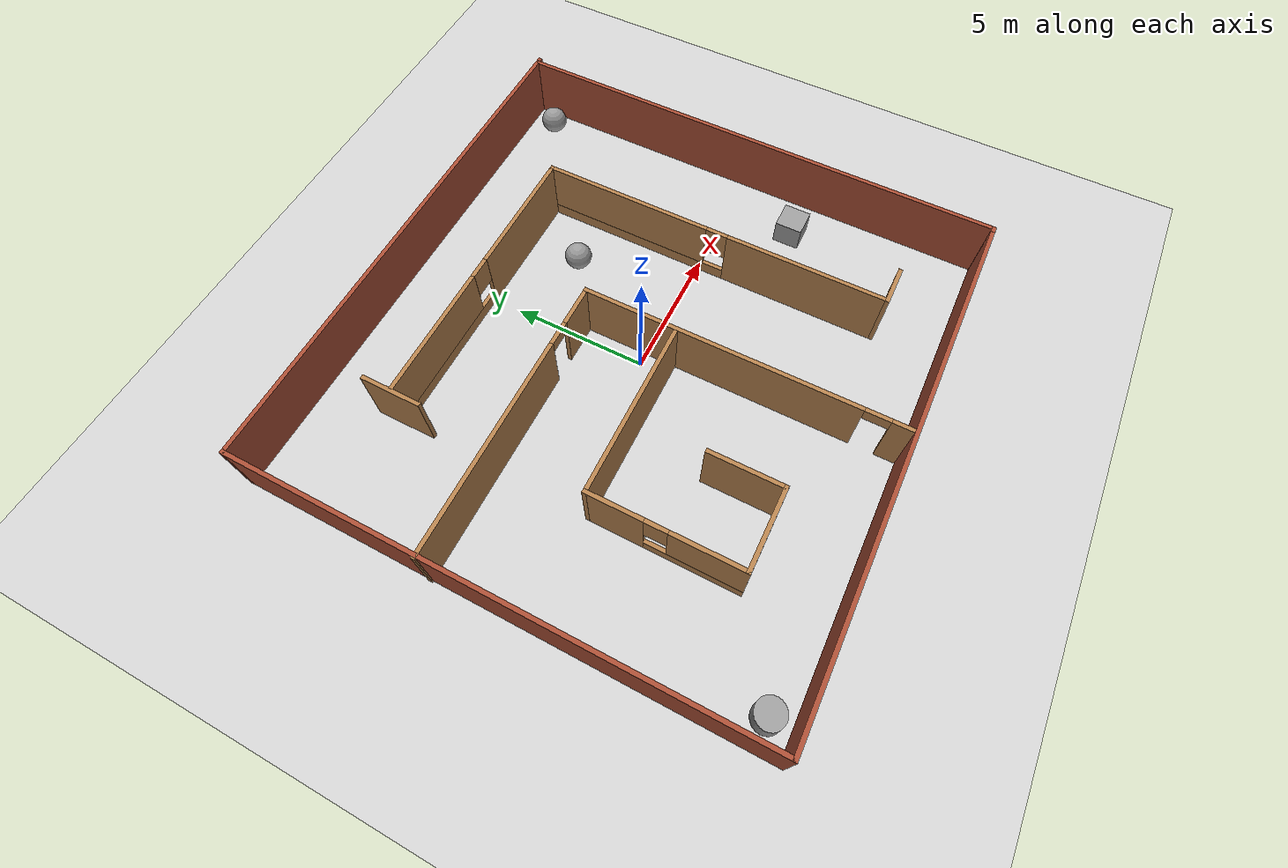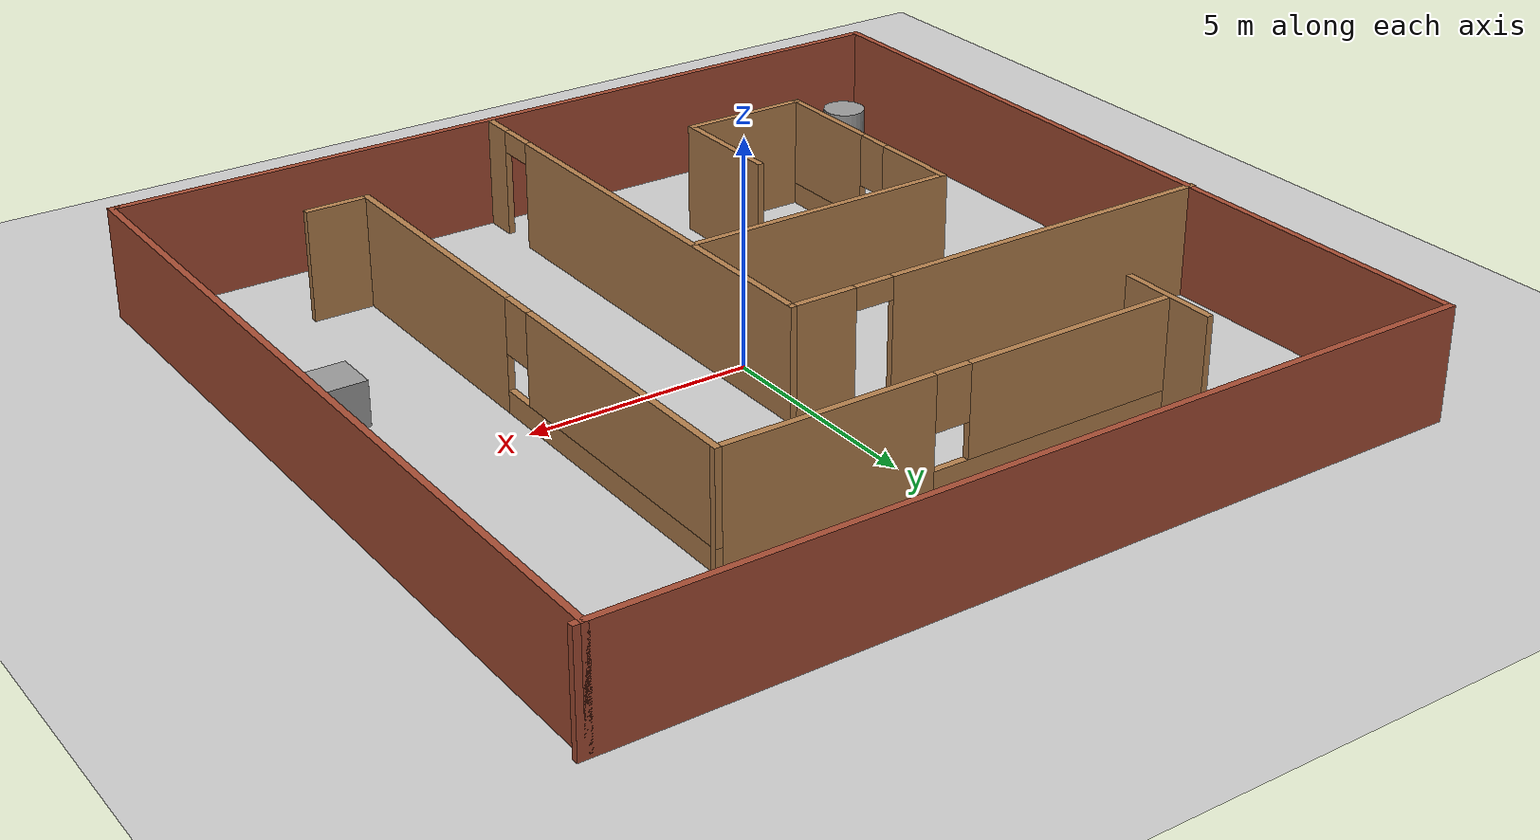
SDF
<sdf version="1.7">
 <world name="default">
  <light name="sun" type="directional">
   <pose>0 0 10 0 -0 0</pose>
   <diffuse>0.8 0.8 0.8 1</diffuse>
   <specular>0.2 0.2 0.2 1</specular>
   <attenuation>
    <range>1000</range>
    <constant>0.9</constant>
    <linear>0.01</linear>
    <quadratic>0.001</quadratic>
   </attenuation>
   <direction>-0.5 0.1 -0.9</direction>
   <spot><inner_angle>0</inner_angle><outer_angle>0</outer_angle><falloff>0</falloff></spot>
  </light>
  <model name="ground_plane">
   <static>1</static>
   <link name="link">
    <collision name="collision">
     <geometry><plane><normal>0 0 1</normal><size>100 100</size></plane></geometry>
     <surface>
      <contact><collide_bitmask>65535</collide_bitmask></contact>
      <friction><ode><mu>100</mu><mu2>50</mu2></ode></friction>
     </surface>
    </collision>
    <visual name="visual">
     <cast_shadows>0</cast_shadows>
     <geometry><plane><normal>0 0 1</normal><size>100 100</size></plane></geometry>
     <material>
      <script><uri>file://media/materials/scripts/gazebo.material</uri><name>Gazebo/Grey</name></script>
     </material>
    </visual>
   </link>
  </model>
  <gravity>0 0 -9.8</gravity>
  <magnetic_field>6e-06 2.3e-05 -4.2e-05</magnetic_field>
  <atmosphere type="adiabatic"/>
  <physics type="ode">
   <max_step_size>0.001</max_step_size>
   <real_time_factor>1</real_time_factor>
   <real_time_update_rate>1000</real_time_update_rate>
  </physics>
  <scene><ambient>0.4 0.4 0.4 1</ambient><background>0.7 0.7 0.7 1</background><shadows>1</shadows></scene>
  <audio><device>default</device></audio>
  <spherical_coordinates>
   <surface_model>EARTH_WGS84</surface_model>
   <latitude_deg>0</latitude_deg>
   <longitude_deg>0</longitude_deg>
   <elevation>0</elevation>
   <heading_deg>0</heading_deg>
  </spherical_coordinates>
  <model name="maze_model">
   <pose>-0.09937 0.063572 0 0 -0 0</pose>
   <link name="Wall_10">
    <pose>-0.271155 6.08651 0 0 -0 3.14159</pose>
    <visual name="Wall_10_Visual_0">
     <pose>-2.84357 0 1.25 0 -0 0</pose>
     <geometry><box><size>4.81286 0.15 2.5</size></box></geometry>
     <material>
      <script><uri>file://media/materials/scripts/gazebo.material</uri><name>Gazebo/Wood</name></script>
      <ambient>1 1 1 1</ambient>
     </material>
     <meta><layer>0</layer></meta>
    </visual>
    <collision name="Wall_10_Collision_0">
     <geometry><box><size>4.81286 0.15 2.5</size></box></geometry>
     <pose>-2.84357 0 1.25 0 -0 0</pose>
    </collision>
    <visual name="Wall_10_Visual_1">
     <pose>2.40643 0 0.25 0 -0 0</pose>
     <geometry><box><size>5.68714 0.15 0.5</size></box></geometry>
     <material>
      <script><uri>file://media/materials/scripts/gazebo.material</uri><name>Gazebo/Wood</name></script>
      <ambient>1 1 1 1</ambient>
     </material>
     <meta><layer>0</layer></meta>
    </visual>
    <collision name="Wall_10_Collision_1">
     <geometry><box><size>5.68714 0.15 0.5</size></box></geometry>
     <pose>2.40643 0 0.25 0 -0 0</pose>
    </collision>
    <visual name="Wall_10_Visual_2">
     <pose>2.80643 0 1.5 0 -0 0</pose>
     <geometry><box><size>4.88714 0.15 2</size></box></geometry>
     <material>
      <script><uri>file://media/materials/scripts/gazebo.material</uri><name>Gazebo/Wood</name></script>
      <ambient>1 1 1 1</ambient>
     </material>
     <meta><layer>0</layer></meta>
    </visual>
    <collision name="Wall_10_Collision_2">
     <geometry><box><size>4.88714 0.15 2</size></box></geometry>
     <pose>2.80643 0 1.5 0 -0 0</pose>
    </collision>
    <visual name="Wall_10_Visual_3">
     <pose>-0.037142 0 1.9 0 -0 0</pose>
     <geometry><box><size>0.8 0.15 1.2</size></box></geometry>
     <material>
      <script><uri>file://media/materials/scripts/gazebo.material</uri><name>Gazebo/Wood</name></script>
      <ambient>1 1 1 1</ambient>
     </material>
     <meta><layer>0</layer></meta>
    </visual>
    <collision name="Wall_10_Collision_3">
     <geometry><box><size>0.8 0.15 1.2</size></box></geometry>
     <pose>-0.037142 0 1.9 0 -0 0</pose>
    </collision>
   </link>
   <link name="Wall_12">
    <pose>-4.52562 2.33175 0 0 -0 0</pose>
    <visual name="Wall_12_Visual_0">
     <pose>-1.23012 0 1.25 0 -0 0</pose>
     <geometry><box><size>8.03976 0.15 2.5</size></box></geometry>
     <material>
      <script><uri>file://media/materials/scripts/gazebo.material</uri><name>Gazebo/Wood</name></script>
      <ambient>1 1 1 1</ambient>
     </material>
     <meta><layer>0</layer></meta>
    </visual>
    <collision name="Wall_12_Collision_0">
     <geometry><box><size>8.03976 0.15 2.5</size></box></geometry>
     <pose>-1.23012 0 1.25 0 -0 0</pose>
    </collision>
    <visual name="Wall_12_Visual_1">
     <pose>4.46988 0 1.25 0 -0 0</pose>
     <geometry><box><size>1.56024 0.15 2.5</size></box></geometry>
     <material>
      <script><uri>file://media/materials/scripts/gazebo.material</uri><name>Gazebo/Wood</name></script>
      <ambient>1 1 1 1</ambient>
     </material>
     <meta><layer>0</layer></meta>
    </visual>
    <collision name="Wall_12_Collision_1">
     <geometry><box><size>1.56024 0.15 2.5</size></box></geometry>
     <pose>4.46988 0 1.25 0 -0 0</pose>
    </collision>
    <visual name="Wall_12_Visual_2">
     <pose>3.23976 0 2.25 0 -0 0</pose>
     <geometry><box><size>0.9 0.15 0.5</size></box></geometry>
     <material>
      <script><uri>file://media/materials/scripts/gazebo.material</uri><name>Gazebo/Wood</name></script>
      <ambient>1 1 1 1</ambient>
     </material>
     <meta><layer>0</layer></meta>
    </visual>
    <collision name="Wall_12_Collision_2">
     <geometry><box><size>0.9 0.15 0.5</size></box></geometry>
     <pose>3.23976 0 2.25 0 -0 0</pose>
    </collision>
   </link>
   <link name="Wall_13">
    <pose>0.649382 -3.46825 0 0 -0 -1.5708</pose>
    <visual name="Wall_13_Visual_0">
     <pose>-0.823503 0 1.25 0 -0 0</pose>
     <geometry><box><size>10.103 0.15 2.5</size></box></geometry>
     <material>
      <script><uri>file://media/materials/scripts/gazebo.material</uri><name>Gazebo/Wood</name></script>
      <ambient>1 1 1 1</ambient>
     </material>
     <meta><layer>0</layer></meta>
    </visual>
    <collision name="Wall_13_Collision_0">
     <geometry><box><size>10.103 0.15 2.5</size></box></geometry>
     <pose>-0.823503 0 1.25 0 -0 0</pose>
    </collision>
    <visual name="Wall_13_Visual_1">
     <pose>5.5015 0 1.25 0 -0 0</pose>
     <geometry><box><size>0.747006 0.15 2.5</size></box></geometry>
     <material>
      <script><uri>file://media/materials/scripts/gazebo.material</uri><name>Gazebo/Wood</name></script>
      <ambient>1 1 1 1</ambient>
     </material>
     <meta><layer>0</layer></meta>
    </visual>
    <collision name="Wall_13_Collision_1">
     <geometry><box><size>0.747006 0.15 2.5</size></box></geometry>
     <pose>5.5015 0 1.25 0 -0 0</pose>
    </collision>
    <visual name="Wall_13_Visual_2">
     <pose>4.67799 0 2.25 0 -0 0</pose>
     <geometry><box><size>0.9 0.15 0.5</size></box></geometry>
     <material>
      <script><uri>file://media/materials/scripts/gazebo.material</uri><name>Gazebo/Wood</name></script>
      <ambient>1 1 1 1</ambient>
     </material>
     <meta><layer>0</layer></meta>
    </visual>
    <collision name="Wall_13_Collision_2">
     <geometry><box><size>0.9 0.15 0.5</size></box></geometry>
     <pose>4.67799 0 2.25 0 -0 0</pose>
    </collision>
   </link>
   <link name="Wall_15">
    <collision name="Wall_15_Collision">
     <geometry><box><size>1.5 0.15 2.5</size></box></geometry>
     <pose>0 0 1.25 0 -0 0</pose>
    </collision>
    <visual name="Wall_15_Visual">
     <pose>0 0 1.25 0 -0 0</pose>
     <geometry><box><size>1.5 0.15 2.5</size></box></geometry>
     <material>
      <script><uri>file://media/materials/scripts/gazebo.material</uri><name>Gazebo/Wood</name></script>
      <ambient>1 1 1 1</ambient>
     </material>
     <meta><layer>0</layer></meta>
    </visual>
    <pose>5.57885 -7.01349 0 0 -0 0</pose>
   </link>
   <link name="Wall_17">
    <collision name="Wall_17_Collision">
     <geometry><box><size>2.25 0.15 2.5</size></box></geometry>
     <pose>0 0 1.25 0 -0 0</pose>
    </collision>
    <visual name="Wall_17_Visual">
     <pose>0 0 1.25 0 -0 0</pose>
     <geometry><box><size>2.25 0.15 2.5</size></box></geometry>
     <material>
      <script><uri>file://media/materials/scripts/gazebo.material</uri><name>Gazebo/Wood</name></script>
      <ambient>1 1 1 1</ambient>
     </material>
     <meta><layer>0</layer></meta>
    </visual>
    <pose>-5.57415 6.0555 0 0 -0 -1.5708</pose>
   </link>
   <link name="Wall_2">
    <collision name="Wall_2_Collision">
     <geometry><box><size>19.5 0.15 2.5</size></box></geometry>
     <pose>0 0 1.25 0 -0 0</pose>
    </collision>
    <visual name="Wall_2_Visual">
     <pose>0 0 1.25 0 -0 0</pose>
     <geometry><box><size>19.5 0.15 2.5</size></box></geometry>
     <material>
      <script><uri>file://media/materials/scripts/gazebo.material</uri><name>Gazebo/Bricks</name></script>
      <ambient>1 1 1 1</ambient>
     </material>
     <meta><layer>0</layer></meta>
    </visual>
    <pose>0.025618 9.425 0 0 -0 0</pose>
   </link>
   <link name="Wall_20">
    <collision name="Wall_20_Collision">
     <geometry><box><size>6.5 0.15 2.5</size></box></geometry>
     <pose>0 0 1.25 0 -0 0</pose>
    </collision>
    <visual name="Wall_20_Visual">
     <pose>0 0 1.25 0 -0 0</pose>
     <geometry><box><size>6.5 0.15 2.5</size></box></geometry>
     <material>
      <script><uri>file://media/materials/scripts/gazebo.material</uri><name>Gazebo/Wood</name></script>
      <ambient>1 1 1 1</ambient>
     </material>
     <meta><layer>0</layer></meta>
    </visual>
    <pose>-2.55945 -1.10698 0 0 -0 3.14159</pose>
   </link>
   <link name="Wall_21">
    <pose>-5.73445 -3.78198 0 0 -0 -1.5708</pose>
    <visual name="Wall_21_Visual_0">
     <pose>-1.71906 0 1.25 0 -0 0</pose>
     <geometry><box><size>2.06188 0.15 2.5</size></box></geometry>
     <material>
      <script><uri>file://media/materials/scripts/gazebo.material</uri><name>Gazebo/Wood</name></script>
      <ambient>1 1 1 1</ambient>
     </material>
     <meta><layer>0</layer></meta>
    </visual>
    <collision name="Wall_21_Collision_0">
     <geometry><box><size>2.06188 0.15 2.5</size></box></geometry>
     <pose>-1.71906 0 1.25 0 -0 0</pose>
    </collision>
    <visual name="Wall_21_Visual_1">
     <pose>1.03094 0 0.25 0 -0 0</pose>
     <geometry><box><size>3.43812 0.15 0.5</size></box></geometry>
     <material>
      <script><uri>file://media/materials/scripts/gazebo.material</uri><name>Gazebo/Wood</name></script>
      <ambient>1 1 1 1</ambient>
     </material>
     <meta><layer>0</layer></meta>
    </visual>
    <collision name="Wall_21_Collision_1">
     <geometry><box><size>3.43812 0.15 0.5</size></box></geometry>
     <pose>1.03094 0 0.25 0 -0 0</pose>
    </collision>
    <visual name="Wall_21_Visual_2">
     <pose>1.43094 0 1.5 0 -0 0</pose>
     <geometry><box><size>2.63812 0.15 2</size></box></geometry>
     <material>
      <script><uri>file://media/materials/scripts/gazebo.material</uri><name>Gazebo/Wood</name></script>
      <ambient>1 1 1 1</ambient>
     </material>
     <meta><layer>0</layer></meta>
    </visual>
    <collision name="Wall_21_Collision_2">
     <geometry><box><size>2.63812 0.15 2</size></box></geometry>
     <pose>1.43094 0 1.5 0 -0 0</pose>
    </collision>
    <visual name="Wall_21_Visual_3">
     <pose>-0.288121 0 1.9 0 -0 0</pose>
     <geometry><box><size>0.8 0.15 1.2</size></box></geometry>
     <material>
      <script><uri>file://media/materials/scripts/gazebo.material</uri><name>Gazebo/Wood</name></script>
      <ambient>1 1 1 1</ambient>
     </material>
     <meta><layer>0</layer></meta>
    </visual>
    <collision name="Wall_21_Collision_3">
     <geometry><box><size>0.8 0.15 1.2</size></box></geometry>
     <pose>-0.288121 0 1.9 0 -0 0</pose>
    </collision>
   </link>
   <link name="Wall_22">
    <collision name="Wall_22_Collision">
     <geometry><box><size>3 0.15 2.5</size></box></geometry>
     <pose>0 0 1.25 0 -0 0</pose>
    </collision>
    <visual name="Wall_22_Visual">
     <pose>0 0 1.25 0 -0 0</pose>
     <geometry><box><size>3 0.15 2.5</size></box></geometry>
     <material>
      <script><uri>file://media/materials/scripts/gazebo.material</uri><name>Gazebo/Wood</name></script>
      <ambient>1 1 1 1</ambient>
     </material>
     <meta><layer>0</layer></meta>
    </visual>
    <pose>-4.30945 -6.45698 0 0 -0 0</pose>
   </link>
   <link name="Wall_23">
    <collision name="Wall_23_Collision">
     <geometry><box><size>2.75 0.15 2.5</size></box></geometry>
     <pose>0 0 1.25 0 -0 0</pose>
    </collision>
    <visual name="Wall_23_Visual">
     <pose>0 0 1.25 0 -0 0</pose>
     <geometry><box><size>2.75 0.15 2.5</size></box></geometry>
     <material>
      <script><uri>file://media/materials/scripts/gazebo.material</uri><name>Gazebo/Wood</name></script>
      <ambient>1 1 1 1</ambient>
     </material>
     <meta><layer>0</layer></meta>
    </visual>
    <pose>-2.88445 -5.15698 0 0 -0 1.5708</pose>
   </link>
   <link name="Wall_4">
    <collision name="Wall_4_Collision">
     <geometry><box><size>19 0.15 2.5</size></box></geometry>
     <pose>0 0 1.25 0 -0 0</pose>
    </collision>
    <visual name="Wall_4_Visual">
     <pose>0 0 1.25 0 -0 0</pose>
     <geometry><box><size>19 0.15 2.5</size></box></geometry>
     <material>
      <script><uri>file://media/materials/scripts/gazebo.material</uri><name>Gazebo/Bricks</name></script>
      <ambient>1 1 1 1</ambient>
     </material>
     <meta><layer>0</layer></meta>
    </visual>
    <pose>-9.64938 -0 0 0 -0 -1.5708</pose>
   </link>
   <link name="Wall_5">
    <collision name="Wall_5_Collision">
     <geometry><box><size>19.25 0.15 2.5</size></box></geometry>
     <pose>0 0 1.25 0 -0 0</pose>
    </collision>
    <visual name="Wall_5_Visual">
     <pose>0 0 1.25 0 -0 0</pose>
     <geometry><box><size>19.25 0.15 2.5</size></box></geometry>
     <material>
      <script><uri>file://media/materials/scripts/gazebo.material</uri><name>Gazebo/Bricks</name></script>
      <ambient>1 1 1 1</ambient>
     </material>
     <meta><layer>0</layer></meta>
    </visual>
    <pose>-0.099382 -9.425 0 0 -0 0</pose>
   </link>
   <link name="Wall_6">
    <collision name="Wall_6_Collision">
     <geometry><box><size>0.25 0.15 2.5</size></box></geometry>
     <pose>0 0 1.25 0 -0 0</pose>
    </collision>
    <visual name="Wall_6_Visual">
     <pose>0 0 1.25 0 -0 0</pose>
     <geometry><box><size>0.25 0.15 2.5</size></box></geometry>
     <material>
      <script><uri>file://media/materials/scripts/gazebo.material</uri><name>Gazebo/Bricks</name></script>
      <ambient>1 1 1 1</ambient>
     </material>
     <meta><layer>0</layer></meta>
    </visual>
    <pose>9.50062 -9.425 0 0 -0 0</pose>
   </link>
   <link name="Wall_7">
    <collision name="Wall_7_Collision">
     <geometry><box><size>19 0.15 2.5</size></box></geometry>
     <pose>0 0 1.25 0 -0 0</pose>
    </collision>
    <visual name="Wall_7_Visual">
     <pose>0 0 1.25 0 -0 0</pose>
     <geometry><box><size>19 0.15 2.5</size></box></geometry>
     <material>
      <script><uri>file://media/materials/scripts/gazebo.material</uri><name>Gazebo/Bricks</name></script>
      <ambient>1 1 1 1</ambient>
     </material>
     <meta><layer>0</layer></meta>
    </visual>
    <pose>9.55062 -0 0 0 -0 1.5708</pose>
   </link>
   <link name="Wall_9">
    <pose>4.90384 -0.463492 0 0 -0 1.5708</pose>
    <visual name="Wall_9_Visual_0">
     <pose>-3.61174 0 1.25 0 -0 0</pose>
     <geometry><box><size>6.02653 0.15 2.5</size></box></geometry>
     <material>
      <script><uri>file://media/materials/scripts/gazebo.material</uri><name>Gazebo/Wood</name></script>
      <ambient>1 1 1 1</ambient>
     </material>
     <meta><layer>0</layer></meta>
    </visual>
    <collision name="Wall_9_Collision_0">
     <geometry><box><size>6.02653 0.15 2.5</size></box></geometry>
     <pose>-3.61174 0 1.25 0 -0 0</pose>
    </collision>
    <visual name="Wall_9_Visual_1">
     <pose>3.01326 0 0.25 0 -0 0</pose>
     <geometry><box><size>7.22347 0.15 0.5</size></box></geometry>
     <material>
      <script><uri>file://media/materials/scripts/gazebo.material</uri><name>Gazebo/Wood</name></script>
      <ambient>1 1 1 1</ambient>
     </material>
     <meta><layer>0</layer></meta>
    </visual>
    <collision name="Wall_9_Collision_1">
     <geometry><box><size>7.22347 0.15 0.5</size></box></geometry>
     <pose>3.01326 0 0.25 0 -0 0</pose>
    </collision>
    <visual name="Wall_9_Visual_2">
     <pose>3.41326 0 1.5 0 -0 0</pose>
     <geometry><box><size>6.42347 0.15 2</size></box></geometry>
     <material>
      <script><uri>file://media/materials/scripts/gazebo.material</uri><name>Gazebo/Wood</name></script>
      <ambient>1 1 1 1</ambient>
     </material>
     <meta><layer>0</layer></meta>
    </visual>
    <collision name="Wall_9_Collision_2">
     <geometry><box><size>6.42347 0.15 2</size></box></geometry>
     <pose>3.41326 0 1.5 0 -0 0</pose>
    </collision>
    <visual name="Wall_9_Visual_3">
     <pose>-0.198474 0 1.9 0 -0 0</pose>
     <geometry><box><size>0.8 0.15 1.2</size></box></geometry>
     <material>
      <script><uri>file://media/materials/scripts/gazebo.material</uri><name>Gazebo/Wood</name></script>
      <ambient>1 1 1 1</ambient>
     </material>
     <meta><layer>0</layer></meta>
    </visual>
    <collision name="Wall_9_Collision_3">
     <geometry><box><size>0.8 0.15 1.2</size></box></geometry>
     <pose>-0.198474 0 1.9 0 -0 0</pose>
    </collision>
   </link>
   <static>1</static>
  </model>
  <model name="unit_box">
   <pose>7.84395 -2.55507 0.499995 -1e-05 -0 -0</pose>
   <link name="link">
    <inertial>
     <mass>1</mass>
     <inertia>
      <ixx>0.166667</ixx>
      <ixy>0</ixy>
      <ixz>0</ixz>
      <iyy>0.166667</iyy>
      <iyz>0</iyz>
      <izz>0.166667</izz>
     </inertia>
    </inertial>
    <collision name="collision"><geometry><box><size>1 1 1</size></box></geometry></collision>
    <visual name="visual">
     <geometry><box><size>1 1 1</size></box></geometry>
     <material>
      <script><name>Gazebo/Grey</name><uri>file://media/materials/scripts/gazebo.material</uri></script>
     </material>
    </visual>
   </link>
  </model>
  <model name="unit_sphere">
   <pose>2.90931 4.13208 0.5 0 -0 0</pose>
   <link name="link">
    <inertial>
     <mass>1</mass>
     <inertia><ixx>0.1</ixx><ixy>0</ixy><ixz>0</ixz><iyy>0.1</iyy><iyz>0</iyz><izz>0.1</izz></inertia>
    </inertial>
    <collision name="collision"><geometry><sphere><radius>0.5</radius></sphere></geometry></collision>
    <visual name="visual">
     <geometry><sphere><radius>0.5</radius></sphere></geometry>
     <material>
      <script><name>Gazebo/Grey</name><uri>file://media/materials/scripts/gazebo.material</uri></script>
     </material>
    </visual>
   </link>
  </model>
  <model name="unit_sphere_0">
   <pose>8.62648 8.43674 0.5 0 -0 0</pose>
   <link name="link">
    <inertial>
     <mass>1</mass>
     <inertia><ixx>0.1</ixx><ixy>0</ixy><ixz>0</ixz><iyy>0.1</iyy><iyz>0</iyz><izz>0.1</izz></inertia>
    </inertial>
    <collision name="collision"><geometry><sphere><radius>0.5</radius></sphere></geometry></collision>
    <visual name="visual">
     <geometry><sphere><radius>0.5</radius></sphere></geometry>
     <material>
      <script><name>Gazebo/Grey</name><uri>file://media/materials/scripts/gazebo.material</uri></script>
     </material>
    </visual>
   </link>
  </model>
  <model name="unit_cylinder">
   <pose>-8.77319 -8.48722 0.499997 3e-06 4e-06 -0</pose>
   <link name="link">
    <inertial>
     <mass>1</mass>
     <inertia><ixx>0.145833</ixx><ixy>0</ixy><ixz>0</ixz><iyy>0.145833</iyy><iyz>0</iyz><izz>0.125</izz></inertia>
    </inertial>
    <collision name="collision">
     <geometry><cylinder><radius>0.5</radius><length>1</length></cylinder></geometry>
    </collision>
    <visual name="visual">
     <geometry><cylinder><radius>0.5</radius><length>1</length></cylinder></geometry>
     <material>
      <script><name>Gazebo/Grey</name><uri>file://media/materials/scripts/gazebo.material</uri></script>
     </material>
    </visual>
   </link>
  </model>
 </world>
</sdf>
